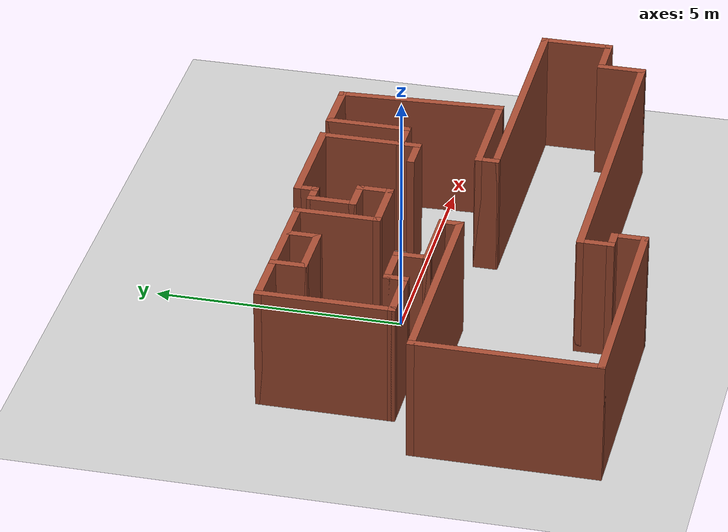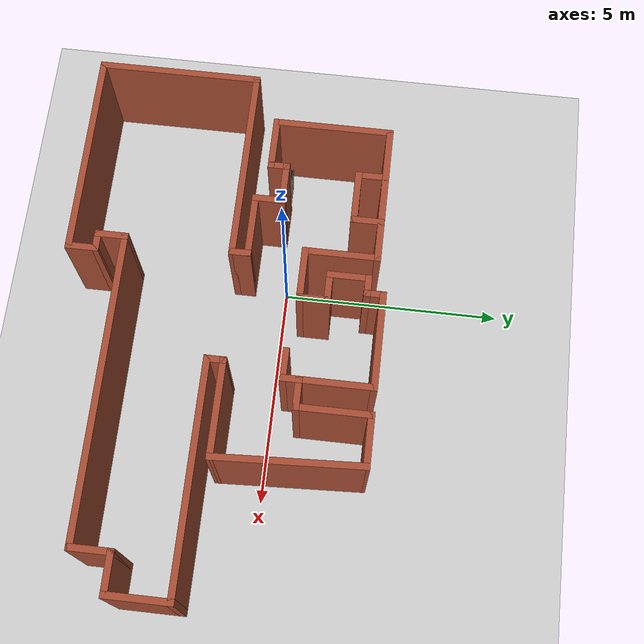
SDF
<sdf version="1.6">
 <world name="default">
  <light name="sun" type="directional">
   <pose>0 0 10 0 -0 0</pose>
   <diffuse>0.8 0.8 0.8 1</diffuse>
   <specular>0.2 0.2 0.2 1</specular>
   <attenuation>
    <range>1000</range>
    <constant>0.9</constant>
    <linear>0.01</linear>
    <quadratic>0.001</quadratic>
   </attenuation>
   <direction>-0.5 0.1 -0.9</direction>
  </light>
  <model name="ground_plane">
   <static>1</static>
   <link name="link">
    <collision name="collision">
     <geometry><plane><normal>0 0 1</normal><size>100 100</size></plane></geometry>
     <surface>
      <contact><collide_bitmask>65535</collide_bitmask></contact>
      <friction><ode><mu>100</mu><mu2>50</mu2></ode></friction>
     </surface>
    </collision>
    <visual name="visual">
     <cast_shadows>0</cast_shadows>
     <geometry><plane><normal>0 0 1</normal><size>100 100</size></plane></geometry>
     <material>
      <script><uri>file://media/materials/scripts/gazebo.material</uri><name>Gazebo/Grey</name></script>
     </material>
    </visual>
   </link>
  </model>
  <gravity>0 0 -9.8</gravity>
  <magnetic_field>6e-06 2.3e-05 -4.2e-05</magnetic_field>
  <atmosphere type="adiabatic"/>
  <physics name="default_physics" default="0" type="ode">
   <max_step_size>0.001</max_step_size>
   <real_time_factor>1</real_time_factor>
   <real_time_update_rate>1000</real_time_update_rate>
  </physics>
  <scene><ambient>0.4 0.4 0.4 1</ambient><background>0.7 0.7 0.7 1</background><shadows>1</shadows></scene>
  <audio><device>default</device></audio>
  <spherical_coordinates>
   <surface_model>EARTH_WGS84</surface_model>
   <latitude_deg>0</latitude_deg>
   <longitude_deg>0</longitude_deg>
   <elevation>0</elevation>
   <heading_deg>0</heading_deg>
  </spherical_coordinates>
  <model name="map_72">
   <pose>1.61218 -1.26808 0 0 -0 0</pose>
   <link name="Wall_1">
    <collision name="Wall_1_Collision">
     <geometry><box><size>1.25 0.15 2.5</size></box></geometry>
     <pose>0 0 1.25 0 -0 0</pose>
    </collision>
    <visual name="Wall_1_Visual">
     <pose>0 0 1.25 0 -0 0</pose>
     <geometry><box><size>1.25 0.15 2.5</size></box></geometry>
     <material>
      <script><uri>file://media/materials/scripts/gazebo.material</uri><name>Gazebo/Bricks</name></script>
      <ambient>1 1 1 1</ambient>
     </material>
     <meta><layer>0</layer></meta>
    </visual>
    <pose>2.275 3.49831 0 0 -0 3.14159</pose>
   </link>
   <link name="Wall_10">
    <collision name="Wall_10_Collision">
     <geometry><box><size>0.75 0.15 2.5</size></box></geometry>
     <pose>0 0 1.25 0 -0 0</pose>
    </collision>
    <visual name="Wall_10_Visual">
     <pose>0 0 1.25 0 -0 0</pose>
     <geometry><box><size>0.75 0.15 2.5</size></box></geometry>
     <material>
      <script><uri>file://media/materials/scripts/gazebo.material</uri><name>Gazebo/Bricks</name></script>
      <ambient>1 1 1 1</ambient>
     </material>
     <meta><layer>0</layer></meta>
    </visual>
    <pose>-0.725 1.99831 0 0 -0 -1.5708</pose>
   </link>
   <link name="Wall_11">
    <collision name="Wall_11_Collision">
     <geometry><box><size>1.25 0.15 2.5</size></box></geometry>
     <pose>0 0 1.25 0 -0 0</pose>
    </collision>
    <visual name="Wall_11_Visual">
     <pose>0 0 1.25 0 -0 0</pose>
     <geometry><box><size>1.25 0.15 2.5</size></box></geometry>
     <material>
      <script><uri>file://media/materials/scripts/gazebo.material</uri><name>Gazebo/Bricks</name></script>
      <ambient>1 1 1 1</ambient>
     </material>
     <meta><layer>0</layer></meta>
    </visual>
    <pose>-1.275 1.69831 0 0 -0 3.14159</pose>
   </link>
   <link name="Wall_12">
    <collision name="Wall_12_Collision">
     <geometry><box><size>1.75 0.15 2.5</size></box></geometry>
     <pose>0 0 1.25 0 -0 0</pose>
    </collision>
    <visual name="Wall_12_Visual">
     <pose>0 0 1.25 0 -0 0</pose>
     <geometry><box><size>1.75 0.15 2.5</size></box></geometry>
     <material>
      <script><uri>file://media/materials/scripts/gazebo.material</uri><name>Gazebo/Bricks</name></script>
      <ambient>1 1 1 1</ambient>
     </material>
     <meta><layer>0</layer></meta>
    </visual>
    <pose>-1.825 2.49831 0 0 -0 1.5708</pose>
   </link>
   <link name="Wall_13">
    <collision name="Wall_13_Collision">
     <geometry><box><size>3.25 0.15 2.5</size></box></geometry>
     <pose>0 0 1.25 0 -0 0</pose>
    </collision>
    <visual name="Wall_13_Visual">
     <pose>0 0 1.25 0 -0 0</pose>
     <geometry><box><size>3.25 0.15 2.5</size></box></geometry>
     <material>
      <script><uri>file://media/materials/scripts/gazebo.material</uri><name>Gazebo/Bricks</name></script>
      <ambient>1 1 1 1</ambient>
     </material>
     <meta><layer>0</layer></meta>
    </visual>
    <pose>-3.375 3.29831 0 0 -0 3.14159</pose>
   </link>
   <link name="Wall_14">
    <collision name="Wall_14_Collision">
     <geometry><box><size>2.75 0.15 2.5</size></box></geometry>
     <pose>0 0 1.25 0 -0 0</pose>
    </collision>
    <visual name="Wall_14_Visual">
     <pose>0 0 1.25 0 -0 0</pose>
     <geometry><box><size>2.75 0.15 2.5</size></box></geometry>
     <material>
      <script><uri>file://media/materials/scripts/gazebo.material</uri><name>Gazebo/Bricks</name></script>
      <ambient>1 1 1 1</ambient>
     </material>
     <meta><layer>0</layer></meta>
    </visual>
    <pose>-4.925 1.99831 0 0 -0 -1.5708</pose>
   </link>
   <link name="Wall_15">
    <collision name="Wall_15_Collision">
     <geometry><box><size>1.25 0.15 2.5</size></box></geometry>
     <pose>0 0 1.25 0 -0 0</pose>
    </collision>
    <visual name="Wall_15_Visual">
     <pose>0 0 1.25 0 -0 0</pose>
     <geometry><box><size>1.25 0.15 2.5</size></box></geometry>
     <material>
      <script><uri>file://media/materials/scripts/gazebo.material</uri><name>Gazebo/Bricks</name></script>
      <ambient>1 1 1 1</ambient>
     </material>
     <meta><layer>0</layer></meta>
    </visual>
    <pose>-4.375 0.698311 0 0 -0 0</pose>
   </link>
   <link name="Wall_16">
    <collision name="Wall_16_Collision">
     <geometry><box><size>0.5 0.15 2.5</size></box></geometry>
     <pose>0 0 1.25 0 -0 0</pose>
    </collision>
    <visual name="Wall_16_Visual">
     <pose>0 0 1.25 0 -0 0</pose>
     <geometry><box><size>0.5 0.15 2.5</size></box></geometry>
     <material>
      <script><uri>file://media/materials/scripts/gazebo.material</uri><name>Gazebo/Bricks</name></script>
      <ambient>1 1 1 1</ambient>
     </material>
     <meta><layer>0</layer></meta>
    </visual>
    <pose>-3.825 0.873311 0 0 -0 1.5708</pose>
   </link>
   <link name="Wall_17">
    <collision name="Wall_17_Collision">
     <geometry><box><size>1 0.15 2.5</size></box></geometry>
     <pose>0 0 1.25 0 -0 0</pose>
    </collision>
    <visual name="Wall_17_Visual">
     <pose>0 0 1.25 0 -0 0</pose>
     <geometry><box><size>1 0.15 2.5</size></box></geometry>
     <material>
      <script><uri>file://media/materials/scripts/gazebo.material</uri><name>Gazebo/Bricks</name></script>
      <ambient>1 1 1 1</ambient>
     </material>
     <meta><layer>0</layer></meta>
    </visual>
    <pose>-3.4 1.04831 0 0 -0 0</pose>
   </link>
   <link name="Wall_18">
    <collision name="Wall_18_Collision">
     <geometry><box><size>0.75 0.15 2.5</size></box></geometry>
     <pose>0 0 1.25 0 -0 0</pose>
    </collision>
    <visual name="Wall_18_Visual">
     <pose>0 0 1.25 0 -0 0</pose>
     <geometry><box><size>0.75 0.15 2.5</size></box></geometry>
     <material>
      <script><uri>file://media/materials/scripts/gazebo.material</uri><name>Gazebo/Bricks</name></script>
      <ambient>1 1 1 1</ambient>
     </material>
     <meta><layer>0</layer></meta>
    </visual>
    <pose>-2.975 0.748311 0 0 -0 -1.5708</pose>
   </link>
   <link name="Wall_19">
    <collision name="Wall_19_Collision">
     <geometry><box><size>1.5 0.15 2.5</size></box></geometry>
     <pose>0 0 1.25 0 -0 0</pose>
    </collision>
    <visual name="Wall_19_Visual">
     <pose>0 0 1.25 0 -0 0</pose>
     <geometry><box><size>1.5 0.15 2.5</size></box></geometry>
     <material>
      <script><uri>file://media/materials/scripts/gazebo.material</uri><name>Gazebo/Bricks</name></script>
      <ambient>1 1 1 1</ambient>
     </material>
     <meta><layer>0</layer></meta>
    </visual>
    <pose>-2.3 0.448311 0 0 -0 0</pose>
   </link>
   <link name="Wall_2">
    <collision name="Wall_2_Collision">
     <geometry><box><size>1.75 0.15 2.5</size></box></geometry>
     <pose>0 0 1.25 0 -0 0</pose>
    </collision>
    <visual name="Wall_2_Visual">
     <pose>0 0 1.25 0 -0 0</pose>
     <geometry><box><size>1.75 0.15 2.5</size></box></geometry>
     <material>
      <script><uri>file://media/materials/scripts/gazebo.material</uri><name>Gazebo/Bricks</name></script>
      <ambient>1 1 1 1</ambient>
     </material>
     <meta><layer>0</layer></meta>
    </visual>
    <pose>1.725 2.69831 0 0 -0 -1.5708</pose>
   </link>
   <link name="Wall_20">
    <collision name="Wall_20_Collision">
     <geometry><box><size>0.5 0.15 2.5</size></box></geometry>
     <pose>0 0 1.25 0 -0 0</pose>
    </collision>
    <visual name="Wall_20_Visual">
     <pose>0 0 1.25 0 -0 0</pose>
     <geometry><box><size>0.5 0.15 2.5</size></box></geometry>
     <material>
      <script><uri>file://media/materials/scripts/gazebo.material</uri><name>Gazebo/Bricks</name></script>
      <ambient>1 1 1 1</ambient>
     </material>
     <meta><layer>0</layer></meta>
    </visual>
    <pose>-1.625 0.273311 0 0 -0 -1.5708</pose>
   </link>
   <link name="Wall_21">
    <collision name="Wall_21_Collision">
     <geometry><box><size>4.5 0.15 2.5</size></box></geometry>
     <pose>0 0 1.25 0 -0 0</pose>
    </collision>
    <visual name="Wall_21_Visual">
     <pose>0 0 1.25 0 -0 0</pose>
     <geometry><box><size>4.5 0.15 2.5</size></box></geometry>
     <material>
      <script><uri>file://media/materials/scripts/gazebo.material</uri><name>Gazebo/Bricks</name></script>
      <ambient>1 1 1 1</ambient>
     </material>
     <meta><layer>0</layer></meta>
    </visual>
    <pose>-3.8 0.098311 0 0 -0 3.14159</pose>
   </link>
   <link name="Wall_23">
    <collision name="Wall_23_Collision">
     <geometry><box><size>3.75 0.15 2.5</size></box></geometry>
     <pose>0 0 1.25 0 -0 0</pose>
    </collision>
    <visual name="Wall_23_Visual">
     <pose>0 0 1.25 0 -0 0</pose>
     <geometry><box><size>3.75 0.15 2.5</size></box></geometry>
     <material>
      <script><uri>file://media/materials/scripts/gazebo.material</uri><name>Gazebo/Bricks</name></script>
      <ambient>1 1 1 1</ambient>
     </material>
     <meta><layer>0</layer></meta>
    </visual>
    <pose>-5.975 -1.70169 0 0 -0 -1.5708</pose>
   </link>
   <link name="Wall_24">
    <collision name="Wall_24_Collision">
     <geometry><box><size>4.75 0.15 2.5</size></box></geometry>
     <pose>0 0 1.25 0 -0 0</pose>
    </collision>
    <visual name="Wall_24_Visual">
     <pose>0 0 1.25 0 -0 0</pose>
     <geometry><box><size>4.75 0.15 2.5</size></box></geometry>
     <material>
      <script><uri>file://media/materials/scripts/gazebo.material</uri><name>Gazebo/Bricks</name></script>
      <ambient>1 1 1 1</ambient>
     </material>
     <meta><layer>0</layer></meta>
    </visual>
    <pose>-3.675 -3.50169 0 0 -0 0</pose>
   </link>
   <link name="Wall_25">
    <collision name="Wall_25_Collision">
     <geometry><box><size>0.75 0.15 2.5</size></box></geometry>
     <pose>0 0 1.25 0 -0 0</pose>
    </collision>
    <visual name="Wall_25_Visual">
     <pose>0 0 1.25 0 -0 0</pose>
     <geometry><box><size>0.75 0.15 2.5</size></box></geometry>
     <material>
      <script><uri>file://media/materials/scripts/gazebo.material</uri><name>Gazebo/Bricks</name></script>
      <ambient>1 1 1 1</ambient>
     </material>
     <meta><layer>0</layer></meta>
    </visual>
    <pose>-1.375 -3.20169 0 0 -0 1.5708</pose>
   </link>
   <link name="Wall_26">
    <collision name="Wall_26_Collision">
     <geometry><box><size>0.5 0.15 2.5</size></box></geometry>
     <pose>0 0 1.25 0 -0 0</pose>
    </collision>
    <visual name="Wall_26_Visual">
     <pose>0 0 1.25 0 -0 0</pose>
     <geometry><box><size>0.5 0.15 2.5</size></box></geometry>
     <material>
      <script><uri>file://media/materials/scripts/gazebo.material</uri><name>Gazebo/Bricks</name></script>
      <ambient>1 1 1 1</ambient>
     </material>
     <meta><layer>0</layer></meta>
    </visual>
    <pose>-1.55 -2.90169 0 0 -0 3.14159</pose>
   </link>
   <link name="Wall_3">
    <collision name="Wall_3_Collision">
     <geometry><box><size>0.75 0.15 2.5</size></box></geometry>
     <pose>0 0 1.25 0 -0 0</pose>
    </collision>
    <visual name="Wall_3_Visual">
     <pose>0 0 1.25 0 -0 0</pose>
     <geometry><box><size>0.75 0.15 2.5</size></box></geometry>
     <material>
      <script><uri>file://media/materials/scripts/gazebo.material</uri><name>Gazebo/Bricks</name></script>
      <ambient>1 1 1 1</ambient>
     </material>
     <meta><layer>0</layer></meta>
    </visual>
    <pose>1.425 1.89831 0 0 -0 3.14159</pose>
   </link>
   <link name="Wall_32">
    <collision name="Wall_32_Collision">
     <geometry><box><size>0.75 0.15 2.5</size></box></geometry>
     <pose>0 0 1.25 0 -0 0</pose>
    </collision>
    <visual name="Wall_32_Visual">
     <pose>0 0 1.25 0 -0 0</pose>
     <geometry><box><size>0.75 0.15 2.5</size></box></geometry>
     <material>
      <script><uri>file://media/materials/scripts/gazebo.material</uri><name>Gazebo/Bricks</name></script>
      <ambient>1 1 1 1</ambient>
     </material>
     <meta><layer>0</layer></meta>
    </visual>
    <pose>-1.725 -2.60169 0 0 -0 1.5708</pose>
   </link>
   <link name="Wall_33">
    <collision name="Wall_33_Collision">
     <geometry><box><size>7 0.15 2.5</size></box></geometry>
     <pose>0 0 1.25 0 -0 0</pose>
    </collision>
    <visual name="Wall_33_Visual">
     <pose>0 0 1.25 0 -0 0</pose>
     <geometry><box><size>7 0.15 2.5</size></box></geometry>
     <material>
      <script><uri>file://media/materials/scripts/gazebo.material</uri><name>Gazebo/Bricks</name></script>
      <ambient>1 1 1 1</ambient>
     </material>
     <meta><layer>0</layer></meta>
    </visual>
    <pose>1.7 -2.30169 0 0 -0 0</pose>
   </link>
   <link name="Wall_34">
    <collision name="Wall_34_Collision">
     <geometry><box><size>1 0.15 2.5</size></box></geometry>
     <pose>0 0 1.25 0 -0 0</pose>
    </collision>
    <visual name="Wall_34_Visual">
     <pose>0 0 1.25 0 -0 0</pose>
     <geometry><box><size>1 0.15 2.5</size></box></geometry>
     <material>
      <script><uri>file://media/materials/scripts/gazebo.material</uri><name>Gazebo/Bricks</name></script>
      <ambient>1 1 1 1</ambient>
     </material>
     <meta><layer>0</layer></meta>
    </visual>
    <pose>5.125 -1.87669 0 0 -0 1.5708</pose>
   </link>
   <link name="Wall_35">
    <collision name="Wall_35_Collision">
     <geometry><box><size>1 0.15 2.5</size></box></geometry>
     <pose>0 0 1.25 0 -0 0</pose>
    </collision>
    <visual name="Wall_35_Visual">
     <pose>0 0 1.25 0 -0 0</pose>
     <geometry><box><size>1 0.15 2.5</size></box></geometry>
     <material>
      <script><uri>file://media/materials/scripts/gazebo.material</uri><name>Gazebo/Bricks</name></script>
      <ambient>1 1 1 1</ambient>
     </material>
     <meta><layer>0</layer></meta>
    </visual>
    <pose>5.55 -1.45169 0 0 -0 0</pose>
   </link>
   <link name="Wall_36">
    <collision name="Wall_36_Collision">
     <geometry><box><size>1.5 0.15 2.5</size></box></geometry>
     <pose>0 0 1.25 0 -0 0</pose>
    </collision>
    <visual name="Wall_36_Visual">
     <pose>0 0 1.25 0 -0 0</pose>
     <geometry><box><size>1.5 0.15 2.5</size></box></geometry>
     <material>
      <script><uri>file://media/materials/scripts/gazebo.material</uri><name>Gazebo/Bricks</name></script>
      <ambient>1 1 1 1</ambient>
     </material>
     <meta><layer>0</layer></meta>
    </visual>
    <pose>5.975 -0.776689 0 0 -0 1.5708</pose>
   </link>
   <link name="Wall_37">
    <collision name="Wall_37_Collision">
     <geometry><box><size>5.25 0.15 2.5</size></box></geometry>
     <pose>0 0 1.25 0 -0 0</pose>
    </collision>
    <visual name="Wall_37_Visual">
     <pose>0 0 1.25 0 -0 0</pose>
     <geometry><box><size>5.25 0.15 2.5</size></box></geometry>
     <material>
      <script><uri>file://media/materials/scripts/gazebo.material</uri><name>Gazebo/Bricks</name></script>
      <ambient>1 1 1 1</ambient>
     </material>
     <meta><layer>0</layer></meta>
    </visual>
    <pose>3.425 -0.101689 0 0 -0 3.14159</pose>
   </link>
   <link name="Wall_38">
    <collision name="Wall_38_Collision">
     <geometry><box><size>0.5 0.15 2.5</size></box></geometry>
     <pose>0 0 1.25 0 -0 0</pose>
    </collision>
    <visual name="Wall_38_Visual">
     <pose>0 0 1.25 0 -0 0</pose>
     <geometry><box><size>0.5 0.15 2.5</size></box></geometry>
     <material>
      <script><uri>file://media/materials/scripts/gazebo.material</uri><name>Gazebo/Bricks</name></script>
      <ambient>1 1 1 1</ambient>
     </material>
     <meta><layer>0</layer></meta>
    </visual>
    <pose>0.875 0.073311 0 0 -0 1.5708</pose>
   </link>
   <link name="Wall_4">
    <collision name="Wall_4_Collision">
     <geometry><box><size>1.75 0.15 2.5</size></box></geometry>
     <pose>0 0 1.25 0 -0 0</pose>
    </collision>
    <visual name="Wall_4_Visual">
     <pose>0 0 1.25 0 -0 0</pose>
     <geometry><box><size>1.75 0.15 2.5</size></box></geometry>
     <material>
      <script><uri>file://media/materials/scripts/gazebo.material</uri><name>Gazebo/Bricks</name></script>
      <ambient>1 1 1 1</ambient>
     </material>
     <meta><layer>0</layer></meta>
    </visual>
    <pose>1.125 2.69831 0 0 -0 1.5708</pose>
   </link>
   <link name="Wall_41">
    <collision name="Wall_41_Collision">
     <geometry><box><size>2.25 0.15 2.5</size></box></geometry>
     <pose>0 0 1.25 0 -0 0</pose>
    </collision>
    <visual name="Wall_41_Visual">
     <pose>0 0 1.25 0 -0 0</pose>
     <geometry><box><size>2.25 0.15 2.5</size></box></geometry>
     <material>
      <script><uri>file://media/materials/scripts/gazebo.material</uri><name>Gazebo/Bricks</name></script>
      <ambient>1 1 1 1</ambient>
     </material>
     <meta><layer>0</layer></meta>
    </visual>
    <pose>1.925 0.248311 0 0 -0 0</pose>
   </link>
   <link name="Wall_42">
    <collision name="Wall_42_Collision">
     <geometry><box><size>3.40346 0.15 2.5</size></box></geometry>
     <pose>0 0 1.25 0 -0 0</pose>
    </collision>
    <visual name="Wall_42_Visual">
     <pose>0 0 1.25 0 -0 0</pose>
     <geometry><box><size>3.40346 0.15 2.5</size></box></geometry>
     <material>
      <script><uri>file://media/materials/scripts/gazebo.material</uri><name>Gazebo/Bricks</name></script>
      <ambient>1 1 1 1</ambient>
     </material>
     <meta><layer>0</layer></meta>
    </visual>
    <pose>2.9 1.87331 0 0 -0 1.61692</pose>
   </link>
   <link name="Wall_44">
    <collision name="Wall_44_Collision">
     <geometry><box><size>0.5 0.15 2.5</size></box></geometry>
     <pose>0 0 1.25 0 -0 0</pose>
    </collision>
    <visual name="Wall_44_Visual">
     <pose>0 0 1.25 0 -0 0</pose>
     <geometry><box><size>0.5 0.15 2.5</size></box></geometry>
     <material>
      <script><uri>file://media/materials/scripts/gazebo.material</uri><name>Gazebo/Bricks</name></script>
      <ambient>1 1 1 1</ambient>
     </material>
     <meta><layer>0</layer></meta>
    </visual>
    <pose>1.125 1.72331 0 0 -0 -1.5708</pose>
   </link>
   <link name="Wall_48">
    <collision name="Wall_48_Collision">
     <geometry><box><size>0.75 0.15 2.5</size></box></geometry>
     <pose>0 0 1.25 0 -0 0</pose>
    </collision>
    <visual name="Wall_48_Visual">
     <pose>0 0 1.25 0 -0 0</pose>
     <geometry><box><size>0.75 0.15 2.5</size></box></geometry>
     <material>
      <script><uri>file://media/materials/scripts/gazebo.material</uri><name>Gazebo/Bricks</name></script>
      <ambient>1 1 1 1</ambient>
     </material>
     <meta><layer>0</layer></meta>
    </visual>
    <pose>0.825 1.54831 0 0 -0 3.14159</pose>
   </link>
   <link name="Wall_5">
    <collision name="Wall_5_Collision">
     <geometry><box><size>2.25 0.15 2.5</size></box></geometry>
     <pose>0 0 1.25 0 -0 0</pose>
    </collision>
    <visual name="Wall_5_Visual">
     <pose>0 0 1.25 0 -0 0</pose>
     <geometry><box><size>2.25 0.15 2.5</size></box></geometry>
     <material>
      <script><uri>file://media/materials/scripts/gazebo.material</uri><name>Gazebo/Bricks</name></script>
      <ambient>1 1 1 1</ambient>
     </material>
     <meta><layer>0</layer></meta>
    </visual>
    <pose>0.075 3.49831 0 0 -0 3.14159</pose>
   </link>
   <link name="Wall_50">
    <collision name="Wall_50_Collision">
     <geometry><box><size>0.75 0.15 2.5</size></box></geometry>
     <pose>0 0 1.25 0 -0 0</pose>
    </collision>
    <visual name="Wall_50_Visual">
     <pose>0 0 1.25 0 -0 0</pose>
     <geometry><box><size>0.75 0.15 2.5</size></box></geometry>
     <material>
      <script><uri>file://media/materials/scripts/gazebo.material</uri><name>Gazebo/Bricks</name></script>
      <ambient>1 1 1 1</ambient>
     </material>
     <meta><layer>0</layer></meta>
    </visual>
    <pose>-3.79035 2.99013 0 0 -0 -1.5708</pose>
   </link>
   <link name="Wall_51">
    <collision name="Wall_51_Collision">
     <geometry><box><size>1.25 0.15 2.5</size></box></geometry>
     <pose>0 0 1.25 0 -0 0</pose>
    </collision>
    <visual name="Wall_51_Visual">
     <pose>0 0 1.25 0 -0 0</pose>
     <geometry><box><size>1.25 0.15 2.5</size></box></geometry>
     <material>
      <script><uri>file://media/materials/scripts/gazebo.material</uri><name>Gazebo/Bricks</name></script>
      <ambient>1 1 1 1</ambient>
     </material>
     <meta><layer>0</layer></meta>
    </visual>
    <pose>-3.24035 2.69014 0 0 -0 0</pose>
   </link>
   <link name="Wall_52">
    <collision name="Wall_52_Collision">
     <geometry><box><size>0.75 0.15 2.5</size></box></geometry>
     <pose>0 0 1.25 0 -0 0</pose>
    </collision>
    <visual name="Wall_52_Visual">
     <pose>0 0 1.25 0 -0 0</pose>
     <geometry><box><size>0.75 0.15 2.5</size></box></geometry>
     <material>
      <script><uri>file://media/materials/scripts/gazebo.material</uri><name>Gazebo/Bricks</name></script>
      <ambient>1 1 1 1</ambient>
     </material>
     <meta><layer>0</layer></meta>
    </visual>
    <pose>-2.69035 2.99013 0 0 -0 1.5708</pose>
   </link>
   <link name="Wall_6">
    <collision name="Wall_6_Collision">
     <geometry><box><size>0.5 0.15 2.5</size></box></geometry>
     <pose>0 0 1.25 0 -0 0</pose>
    </collision>
    <visual name="Wall_6_Visual">
     <pose>0 0 1.25 0 -0 0</pose>
     <geometry><box><size>0.5 0.15 2.5</size></box></geometry>
     <material>
      <script><uri>file://media/materials/scripts/gazebo.material</uri><name>Gazebo/Bricks</name></script>
      <ambient>1 1 1 1</ambient>
     </material>
     <meta><layer>0</layer></meta>
    </visual>
    <pose>-0.975 3.32331 0 0 -0 -1.5708</pose>
   </link>
   <link name="Wall_7">
    <collision name="Wall_7_Collision">
     <geometry><box><size>0.5 0.15 2.5</size></box></geometry>
     <pose>0 0 1.25 0 -0 0</pose>
    </collision>
    <visual name="Wall_7_Visual">
     <pose>0 0 1.25 0 -0 0</pose>
     <geometry><box><size>0.5 0.15 2.5</size></box></geometry>
     <material>
      <script><uri>file://media/materials/scripts/gazebo.material</uri><name>Gazebo/Bricks</name></script>
      <ambient>1 1 1 1</ambient>
     </material>
     <meta><layer>0</layer></meta>
    </visual>
    <pose>-1.15 3.14831 0 0 -0 3.14159</pose>
   </link>
   <link name="Wall_8">
    <collision name="Wall_8_Collision">
     <geometry><box><size>1 0.15 2.5</size></box></geometry>
     <pose>0 0 1.25 0 -0 0</pose>
    </collision>
    <visual name="Wall_8_Visual">
     <pose>0 0 1.25 0 -0 0</pose>
     <geometry><box><size>1 0.15 2.5</size></box></geometry>
     <material>
      <script><uri>file://media/materials/scripts/gazebo.material</uri><name>Gazebo/Bricks</name></script>
      <ambient>1 1 1 1</ambient>
     </material>
     <meta><layer>0</layer></meta>
    </visual>
    <pose>-1.325 2.72331 0 0 -0 -1.5708</pose>
   </link>
   <link name="Wall_9">
    <collision name="Wall_9_Collision">
     <geometry><box><size>0.75 0.15 2.5</size></box></geometry>
     <pose>0 0 1.25 0 -0 0</pose>
    </collision>
    <visual name="Wall_9_Visual">
     <pose>0 0 1.25 0 -0 0</pose>
     <geometry><box><size>0.75 0.15 2.5</size></box></geometry>
     <material>
      <script><uri>file://media/materials/scripts/gazebo.material</uri><name>Gazebo/Bricks</name></script>
      <ambient>1 1 1 1</ambient>
     </material>
     <meta><layer>0</layer></meta>
    </visual>
    <pose>-1.025 2.29831 0 0 -0 0</pose>
   </link>
   <static>1</static>
  </model>
  <model name="6_Cube_StorageE">
   <link name="Wall_0">
    <pose>0 0 0.01 0 -0 0</pose>
    <inertial>
     <mass>1.6201</mass>
     <inertia><ixx>0.0119</ixx><iyy>0.0631</iyy><izz>0.0513</izz><ixy>0</ixy><ixz>0</ixz><iyz>0</iyz></inertia>
    </inertial>
    <collision name="Wall_0_Collision"><geometry><box><size>0.616 0.296 0.02</size></box></geometry></collision>
    <visual name="Wall_0_Visual">
     <geometry><box><size>0.616 0.296 0.02</size></box></geometry>
     <material>
      <script><uri>file://media/materials/scripts/gazebo.material</uri><name>Gazebo/Grey</name></script>
      <ambient>0.105882 0.0509804 0 1</ambient>
     </material>
    </visual>
   </link>
   <joint name="0_2" type="fixed">
    <pose>-0.308 0 0 0 -0 0</pose>
    <parent>Wall_2</parent>
    <child>Wall_0</child>
    <axis>
     <xyz>1 0 0</xyz>
     <use_parent_model_frame>0</use_parent_model_frame>
     <limit><lower>-1e+16</lower><upper>1e+16</upper></limit>
    </axis>
   </joint>
   <joint name="0_12" type="fixed">
    <parent>Wall_12</parent>
    <child>Wall_0</child>
    <axis>
     <xyz>0 0 1</xyz>
     <use_parent_model_frame>0</use_parent_model_frame>
     <limit><lower>-1e+16</lower><upper>1e+16</upper></limit>
    </axis>
   </joint>
   <joint name="0_4" type="fixed">
    <pose>0.308 0 0 0 -0 0</pose>
    <parent>Wall_4</parent>
    <child>Wall_0</child>
    <axis>
     <xyz>1 0 0</xyz>
     <use_parent_model_frame>0</use_parent_model_frame>
     <limit><lower>-1e+16</lower><upper>1e+16</upper></limit>
    </axis>
   </joint>
   <link name="Wall_10">
    <pose>0 0 0.61 0 -0 0</pose>
    <inertial>
     <mass>1.6201</mass>
     <inertia><ixx>0.0119</ixx><iyy>0.0631</iyy><izz>0.0513</izz><ixy>0</ixy><ixz>0</ixz><iyz>0</iyz></inertia>
    </inertial>
    <collision name="Wall_10_Collision"><geometry><box><size>0.616 0.296 0.02</size></box></geometry></collision>
    <visual name="Wall_10_Visual">
     <geometry><box><size>0.616 0.296 0.02</size></box></geometry>
     <material>
      <script><uri>file://media/materials/scripts/gazebo.material</uri><name>Gazebo/Grey</name></script>
      <ambient>0.105882 0.0509804 0 1</ambient>
     </material>
    </visual>
   </link>
   <joint name="10_2" type="fixed">
    <pose>-0.308 0 0 0 -0 0</pose>
    <parent>Wall_2</parent>
    <child>Wall_10</child>
    <axis>
     <xyz>1 0 0</xyz>
     <use_parent_model_frame>0</use_parent_model_frame>
     <limit><lower>-1e+16</lower><upper>1e+16</upper></limit>
    </axis>
   </joint>
   <joint name="10_12" type="fixed">
    <parent>Wall_12</parent>
    <child>Wall_10</child>
    <axis>
     <xyz>0 0 1</xyz>
     <use_parent_model_frame>0</use_parent_model_frame>
     <limit><lower>-1e+16</lower><upper>1e+16</upper></limit>
    </axis>
   </joint>
   <joint name="10_4" type="fixed">
    <pose>0.308 0 0 0 -0 0</pose>
    <parent>Wall_4</parent>
    <child>Wall_10</child>
    <axis>
     <xyz>1 0 0</xyz>
     <use_parent_model_frame>0</use_parent_model_frame>
     <limit><lower>-1e+16</lower><upper>1e+16</upper></limit>
    </axis>
   </joint>
   <link name="Wall_12">
    <pose>0 0 0.4575 0 -0 0</pose>
    <inertial>
     <mass>2.4065</mass>
     <inertia><ixx>0.0177</ixx><iyy>0.1855</iyy><izz>0.168</izz><ixy>0</ixy><ixz>0</ixz><iyz>0</iyz></inertia>
    </inertial>
    <collision name="Wall_12_Collision"><geometry><box><size>0.02 0.296 0.915</size></box></geometry></collision>
    <visual name="Wall_12_Visual">
     <geometry><box><size>0.02 0.296 0.915</size></box></geometry>
     <material>
      <script><uri>file://media/materials/scripts/gazebo.material</uri><name>Gazebo/Grey</name></script>
      <ambient>0.105882 0.0509804 0 1</ambient>
     </material>
    </visual>
   </link>
   <link name="Wall_2">
    <pose>-0.298 0 0.4575 0 -0 0</pose>
    <inertial>
     <mass>2.4065</mass>
     <inertia><ixx>0.0177</ixx><iyy>0.1855</iyy><izz>0.168</izz><ixy>0</ixy><ixz>0</ixz><iyz>0</iyz></inertia>
    </inertial>
    <collision name="Wall_2_Collision"><geometry><box><size>0.02 0.296 0.915</size></box></geometry></collision>
    <visual name="Wall_2_Visual">
     <geometry><box><size>0.02 0.296 0.915</size></box></geometry>
     <material>
      <script><uri>file://media/materials/scripts/gazebo.material</uri><name>Gazebo/Grey</name></script>
      <ambient>0.105882 0.0509804 0 1</ambient>
     </material>
    </visual>
   </link>
   <link name="Wall_4">
    <pose>0.298 0 0.4575 0 -0 0</pose>
    <inertial>
     <mass>2.4065</mass>
     <inertia><ixx>0.0177</ixx><iyy>0.1855</iyy><izz>0.168</izz><ixy>0</ixy><ixz>0</ixz><iyz>0</iyz></inertia>
    </inertial>
    <collision name="Wall_4_Collision"><geometry><box><size>0.02 0.296 0.915</size></box></geometry></collision>
    <visual name="Wall_4_Visual">
     <geometry><box><size>0.02 0.296 0.915</size></box></geometry>
     <material>
      <script><uri>file://media/materials/scripts/gazebo.material</uri><name>Gazebo/Grey</name></script>
      <ambient>0.105882 0.0509804 0 1</ambient>
     </material>
    </visual>
   </link>
   <link name="Wall_6">
    <pose>0 0 0.905 0 -0 0</pose>
    <inertial>
     <mass>1.6201</mass>
     <inertia><ixx>0.0119</ixx><iyy>0.0631</iyy><izz>0.0513</izz><ixy>0</ixy><ixz>0</ixz><iyz>0</iyz></inertia>
    </inertial>
    <collision name="Wall_6_Collision"><geometry><box><size>0.616 0.296 0.02</size></box></geometry></collision>
    <visual name="Wall_6_Visual">
     <geometry><box><size>0.616 0.296 0.02</size></box></geometry>
     <material>
      <script><uri>file://media/materials/scripts/gazebo.material</uri><name>Gazebo/Grey</name></script>
      <ambient>0.105882 0.0509804 0 1</ambient>
     </material>
    </visual>
   </link>
   <joint name="6_2" type="fixed">
    <pose>-0.308 0 0 0 -0 0</pose>
    <parent>Wall_2</parent>
    <child>Wall_6</child>
    <axis>
     <xyz>2 0 0</xyz>
     <use_parent_model_frame>0</use_parent_model_frame>
     <limit><lower>-1e+16</lower><upper>1e+16</upper></limit>
    </axis>
   </joint>
   <joint name="6_12" type="fixed">
    <parent>Wall_12</parent>
    <child>Wall_6</child>
    <axis>
     <xyz>0 0 1</xyz>
     <use_parent_model_frame>0</use_parent_model_frame>
     <limit><lower>-1e+16</lower><upper>1e+16</upper></limit>
    </axis>
   </joint>
   <joint name="6_4" type="fixed">
    <pose>0.308 0 0 0 -0 0</pose>
    <parent>Wall_4</parent>
    <child>Wall_6</child>
    <axis>
     <xyz>1 0 0</xyz>
     <use_parent_model_frame>0</use_parent_model_frame>
     <limit><lower>-1e+16</lower><upper>1e+16</upper></limit>
    </axis>
   </joint>
   <link name="Wall_8">
    <pose>0 0 0.305 0 -0 0</pose>
    <inertial>
     <mass>1.6201</mass>
     <inertia><ixx>0.0119</ixx><iyy>0.0631</iyy><izz>0.0513</izz><ixy>0</ixy><ixz>0</ixz><iyz>0</iyz></inertia>
    </inertial>
    <collision name="Wall_8_Collision"><geometry><box><size>0.616 0.296 0.02</size></box></geometry></collision>
    <visual name="Wall_8_Visual">
     <geometry><box><size>0.616 0.296 0.02</size></box></geometry>
     <material>
      <script><uri>file://media/materials/scripts/gazebo.material</uri><name>Gazebo/Grey</name></script>
      <ambient>0.105882 0.0509804 0 1</ambient>
     </material>
    </visual>
   </link>
   <joint name="8_2" type="fixed">
    <pose>-0.308 0 0 0 -0 0</pose>
    <parent>Wall_2</parent>
    <child>Wall_8</child>
    <axis>
     <xyz>1 0 0</xyz>
     <use_parent_model_frame>0</use_parent_model_frame>
     <limit><lower>-1e+16</lower><upper>1e+16</upper></limit>
    </axis>
   </joint>
   <joint name="8_12" type="fixed">
    <parent>Wall_12</parent>
    <child>Wall_8</child>
    <axis>
     <xyz>0 0 1</xyz>
     <use_parent_model_frame>0</use_parent_model_frame>
     <limit><lower>-1e+16</lower><upper>1e+16</upper></limit>
    </axis>
   </joint>
   <joint name="8_4" type="fixed">
    <pose>0.308 0 0 0 -0 0</pose>
    <parent>Wall_4</parent>
    <child>Wall_8</child>
    <axis>
     <xyz>1 0 0</xyz>
     <use_parent_model_frame>0</use_parent_model_frame>
     <limit><lower>-1e+16</lower><upper>1e+16</upper></limit>
    </axis>
   </joint>
   <static>1</static>
   <pose>-2.64849 -0.321144 0 0 -0 0</pose>
  </model>
 </world>
</sdf>
